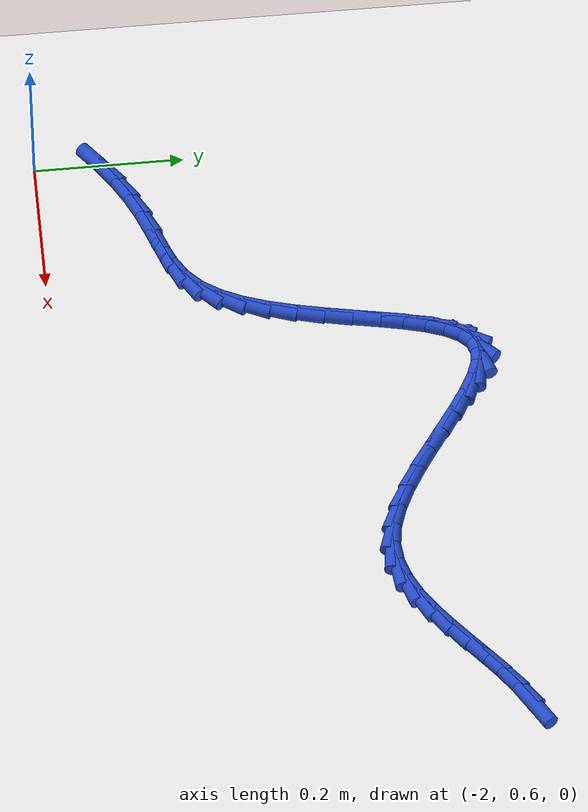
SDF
<sdf version="1.6">
 <world name="default">
  <model name="ground_plane">
   <static>1</static>
   <link name="link">
    <collision name="collision">
     <geometry><plane><normal>0 0 1</normal><size>100 100</size></plane></geometry>
     <surface><friction><ode><mu>100</mu><mu2>50</mu2></ode></friction></surface>
    </collision>
    <visual name="visual">
     <cast_shadows>0</cast_shadows>
     <geometry><plane><normal>0 0 1</normal><size>100 100</size></plane></geometry>
     <material>
      <script><uri>file://media/materials/scripts/gazebo.material</uri><name>Gazebo/WhiteGlow</name></script>
     </material>
    </visual>
   </link>
  </model>
  <model name="line">
   <link name="link_63">
    <pose>-1.059875980534617 1.153089300878136 0.01 0 1.57 0.5009448567318048</pose>
    <collision name="collision">
     <geometry><cylinder><radius>0.01</radius><length>0.08</length></cylinder></geometry>
    </collision>
    <visual name="visual">
     <material>
      <script><name>Gazebo/Blue</name><uri>file://media/materials/scripts/gazebo.material</uri></script>
     </material>
     <geometry><cylinder><radius>0.01</radius><length>0.08</length></cylinder></geometry>
    </visual>
   </link>
   <link name="link_64">
    <pose>-1.086475341348815 1.1385253536591375 0.01 0 1.57 0.587125376779683</pose>
    <collision name="collision">
     <geometry><cylinder><radius>0.01</radius><length>0.08</length></cylinder></geometry>
    </collision>
    <visual name="visual">
     <material>
      <script><name>Gazebo/Blue</name><uri>file://media/materials/scripts/gazebo.material</uri></script>
     </material>
     <geometry><cylinder><radius>0.01</radius><length>0.08</length></cylinder></geometry>
    </visual>
   </link>
   <link name="link_65">
    <pose>-1.1124869296426356 1.1212172349632477 0.01 0 1.57 0.6407535852951146</pose>
    <collision name="collision">
     <geometry><cylinder><radius>0.01</radius><length>0.08</length></cylinder></geometry>
    </collision>
    <visual name="visual">
     <material>
      <script><name>Gazebo/Blue</name><uri>file://media/materials/scripts/gazebo.material</uri></script>
     </material>
     <geometry><cylinder><radius>0.01</radius><length>0.08</length></cylinder></geometry>
    </visual>
   </link>
   <link name="link_66">
    <pose>-1.138097071387128 1.1021193473184996 0.01 0 1.57 0.6630561135025415</pose>
    <collision name="collision">
     <geometry><cylinder><radius>0.01</radius><length>0.08</length></cylinder></geometry>
    </collision>
    <visual name="visual">
     <material>
      <script><name>Gazebo/Blue</name><uri>file://media/materials/scripts/gazebo.material</uri></script>
     </material>
     <geometry><cylinder><radius>0.01</radius><length>0.08</length></cylinder></geometry>
    </visual>
   </link>
   <link name="link_67">
    <pose>-1.1634979659799358 1.0822809057299072 0.01 0 1.57 0.6557882963308712</pose>
    <collision name="collision">
     <geometry><cylinder><radius>0.01</radius><length>0.08</length></cylinder></geometry>
    </collision>
    <visual name="visual">
     <material>
      <script><name>Gazebo/Blue</name><uri>file://media/materials/scripts/gazebo.material</uri></script>
     </material>
     <geometry><cylinder><radius>0.01</radius><length>0.08</length></cylinder></geometry>
    </visual>
   </link>
   <link name="link_68">
    <pose>-1.1888818128187038 1.0627511252024853 0.01 0 1.57 0.618056303916666</pose>
    <collision name="collision">
     <geometry><cylinder><radius>0.01</radius><length>0.08</length></cylinder></geometry>
    </collision>
    <visual name="visual">
     <material>
      <script><name>Gazebo/Blue</name><uri>file://media/materials/scripts/gazebo.material</uri></script>
     </material>
     <geometry><cylinder><radius>0.01</radius><length>0.08</length></cylinder></geometry>
    </visual>
   </link>
   <link name="link_69">
    <pose>-1.2144408113010754 1.044579220741249 0.01 0 1.57 0.5463259533520801</pose>
    <collision name="collision">
     <geometry><cylinder><radius>0.01</radius><length>0.08</length></cylinder></geometry>
    </collision>
    <visual name="visual">
     <material>
      <script><name>Gazebo/Blue</name><uri>file://media/materials/scripts/gazebo.material</uri></script>
     </material>
     <geometry><cylinder><radius>0.01</radius><length>0.08</length></cylinder></geometry>
    </visual>
   </link>
   <link name="link_70">
    <pose>-1.240367160824695 1.0288144073512127 0.01 0 1.57 0.4350268030249729</pose>
    <collision name="collision">
     <geometry><cylinder><radius>0.01</radius><length>0.08</length></cylinder></geometry>
    </collision>
    <visual name="visual">
     <material>
      <script><name>Gazebo/Blue</name><uri>file://media/materials/scripts/gazebo.material</uri></script>
     </material>
     <geometry><cylinder><radius>0.01</radius><length>0.08</length></cylinder></geometry>
    </visual>
   </link>
   <link name="link_71">
    <pose>-1.2668530607872064 1.0165059000373915 0.01 0 1.57 0.2790055510104532</pose>
    <collision name="collision">
     <geometry><cylinder><radius>0.01</radius><length>0.08</length></cylinder></geometry>
    </collision>
    <visual name="visual">
     <material>
      <script><name>Gazebo/Blue</name><uri>file://media/materials/scripts/gazebo.material</uri></script>
     </material>
     <geometry><cylinder><radius>0.01</radius><length>0.08</length></cylinder></geometry>
    </visual>
   </link>
   <link name="link_72">
    <pose>-1.294090710586254 1.0087029138048 0.01 0 1.57 0.07960863686700781</pose>
    <collision name="collision">
     <geometry><cylinder><radius>0.01</radius><length>0.08</length></cylinder></geometry>
    </collision>
    <visual name="visual">
     <material>
      <script><name>Gazebo/Blue</name><uri>file://media/materials/scripts/gazebo.material</uri></script>
     </material>
     <geometry><cylinder><radius>0.01</radius><length>0.08</length></cylinder></geometry>
    </visual>
   </link>
   <link name="link_73">
    <pose>-1.3222723096194808 1.006454663658453 0.01 0 1.57 -0.14136464432406018</pose>
    <collision name="collision">
     <geometry><cylinder><radius>0.01</radius><length>0.08</length></cylinder></geometry>
    </collision>
    <visual name="visual">
     <material>
      <script><name>Gazebo/Blue</name><uri>file://media/materials/scripts/gazebo.material</uri></script>
     </material>
     <geometry><cylinder><radius>0.01</radius><length>0.08</length></cylinder></geometry>
    </visual>
   </link>
   <link name="link_74">
    <pose>-1.3515428631310427 1.0106202705275913 0.01 0 1.57 -0.31899717183233545</pose>
    <collision name="collision">
     <geometry><cylinder><radius>0.01</radius><length>0.08</length></cylinder></geometry>
    </collision>
    <visual name="visual">
     <material>
      <script><name>Gazebo/Blue</name><uri>file://media/materials/scripts/gazebo.material</uri></script>
     </material>
     <geometry><cylinder><radius>0.01</radius><length>0.08</length></cylinder></geometry>
    </visual>
   </link>
   <link name="link_75">
    <pose>-1.3816785866336523 1.020573401361074 0.01 0 1.57 -0.44021547780281073</pose>
    <collision name="collision">
     <geometry><cylinder><radius>0.01</radius><length>0.08</length></cylinder></geometry>
    </collision>
    <visual name="visual">
     <material>
      <script><name>Gazebo/Blue</name><uri>file://media/materials/scripts/gazebo.material</uri></script>
     </material>
     <geometry><cylinder><radius>0.01</radius><length>0.08</length></cylinder></geometry>
    </visual>
   </link>
   <link name="link_76">
    <pose>-1.4122822410696305 1.0349890627057887 0.01 0 1.57 -0.5196746571622749</pose>
    <collision name="collision">
     <geometry><cylinder><radius>0.01</radius><length>0.08</length></cylinder></geometry>
    </collision>
    <visual name="visual">
     <material>
      <script><name>Gazebo/Blue</name><uri>file://media/materials/scripts/gazebo.material</uri></script>
     </material>
     <geometry><cylinder><radius>0.01</radius><length>0.08</length></cylinder></geometry>
    </visual>
   </link>
   <link name="link_77">
    <pose>-1.442955578245593 1.0525381963950025 0.01 0 1.57 -0.5677427641559064</pose>
    <collision name="collision">
     <geometry><cylinder><radius>0.01</radius><length>0.08</length></cylinder></geometry>
    </collision>
    <visual name="visual">
     <material>
      <script><name>Gazebo/Blue</name><uri>file://media/materials/scripts/gazebo.material</uri></script>
     </material>
     <geometry><cylinder><radius>0.01</radius><length>0.08</length></cylinder></geometry>
    </visual>
   </link>
   <link name="link_78">
    <pose>-1.473300349968158 1.071891744261982 0.01 0 1.57 -0.589954139471864</pose>
    <collision name="collision">
     <geometry><cylinder><radius>0.01</radius><length>0.08</length></cylinder></geometry>
    </collision>
    <visual name="visual">
     <material>
      <script><name>Gazebo/Blue</name><uri>file://media/materials/scripts/gazebo.material</uri></script>
     </material>
     <geometry><cylinder><radius>0.01</radius><length>0.08</length></cylinder></geometry>
    </visual>
   </link>
   <link name="link_79">
    <pose>-1.5029183080439437 1.0917206481399946 0.01 0 1.57 -0.5875149770205776</pose>
    <collision name="collision">
     <geometry><cylinder><radius>0.01</radius><length>0.08</length></cylinder></geometry>
    </collision>
    <visual name="visual">
     <material>
      <script><name>Gazebo/Blue</name><uri>file://media/materials/scripts/gazebo.material</uri></script>
     </material>
     <geometry><cylinder><radius>0.01</radius><length>0.08</length></cylinder></geometry>
    </visual>
   </link>
   <link name="link_80">
    <pose>-1.5314112042795665 1.1106958498623078 0.01 0 1.57 -0.5569030615221331</pose>
    <collision name="collision">
     <geometry><cylinder><radius>0.01</radius><length>0.08</length></cylinder></geometry>
    </collision>
    <visual name="visual">
     <material>
      <script><name>Gazebo/Blue</name><uri>file://media/materials/scripts/gazebo.material</uri></script>
     </material>
     <geometry><cylinder><radius>0.01</radius><length>0.08</length></cylinder></geometry>
    </visual>
   </link>
   <link name="link_81">
    <pose>-1.5583807904816445 1.1274882912621889 0.01 0 1.57 -0.4875196454446779</pose>
    <collision name="collision">
     <geometry><cylinder><radius>0.01</radius><length>0.08</length></cylinder></geometry>
    </collision>
    <visual name="visual">
     <material>
      <script><name>Gazebo/Blue</name><uri>file://media/materials/scripts/gazebo.material</uri></script>
     </material>
     <geometry><cylinder><radius>0.01</radius><length>0.08</length></cylinder></geometry>
    </visual>
   </link>
   <link name="link_82">
    <pose>-1.5834288184567946 1.1407689141729045 0.01 0 1.57 -0.3555521890718399</pose>
    <collision name="collision">
     <geometry><cylinder><radius>0.01</radius><length>0.08</length></cylinder></geometry>
    </collision>
    <visual name="visual">
     <material>
      <script><name>Gazebo/Blue</name><uri>file://media/materials/scripts/gazebo.material</uri></script>
     </material>
     <geometry><cylinder><radius>0.01</radius><length>0.08</length></cylinder></geometry>
    </visual>
   </link>
   <link name="link_83">
    <pose>-1.6061570400116345 1.1492086604277216 0.01 0 1.57 -0.11295011546609711</pose>
    <collision name="collision">
     <geometry><cylinder><radius>0.01</radius><length>0.08</length></cylinder></geometry>
    </collision>
    <visual name="visual">
     <material>
      <script><name>Gazebo/Blue</name><uri>file://media/materials/scripts/gazebo.material</uri></script>
     </material>
     <geometry><cylinder><radius>0.01</radius><length>0.08</length></cylinder></geometry>
    </visual>
   </link>
   <link name="link_84">
    <pose>-1.6261672069527822 1.151478471859908 0.01 0 1.57 0.2977715425312111</pose>
    <collision name="collision">
     <geometry><cylinder><radius>0.01</radius><length>0.08</length></cylinder></geometry>
    </collision>
    <visual name="visual">
     <material>
      <script><name>Gazebo/Blue</name><uri>file://media/materials/scripts/gazebo.material</uri></script>
     </material>
     <geometry><cylinder><radius>0.01</radius><length>0.08</length></cylinder></geometry>
    </visual>
   </link>
   <link name="link_85">
    <pose>-1.643076829352203 1.146288972470581 0.01 0 1.57 0.7467129131308256</pose>
    <collision name="collision">
     <geometry><cylinder><radius>0.01</radius><length>0.08</length></cylinder></geometry>
    </collision>
    <visual name="visual">
     <material>
      <script><name>Gazebo/Blue</name><uri>file://media/materials/scripts/gazebo.material</uri></script>
     </material>
     <geometry><cylinder><radius>0.01</radius><length>0.08</length></cylinder></geometry>
    </visual>
   </link>
   <link name="link_86">
    <pose>-1.6569425465516494 1.133456593340915 0.01 0 1.57 1.0416243025756533</pose>
    <collision name="collision">
     <geometry><cylinder><radius>0.01</radius><length>0.08</length></cylinder></geometry>
    </collision>
    <visual name="visual">
     <material>
      <script><name>Gazebo/Blue</name><uri>file://media/materials/scripts/gazebo.material</uri></script>
     </material>
     <geometry><cylinder><radius>0.01</radius><length>0.08</length></cylinder></geometry>
    </visual>
   </link>
   <link name="link_87">
    <pose>-1.668307497542979 1.114022859834216 0.01 0 1.57 1.2090798800793858</pose>
    <collision name="collision">
     <geometry><cylinder><radius>0.01</radius><length>0.08</length></cylinder></geometry>
    </collision>
    <visual name="visual">
     <material>
      <script><name>Gazebo/Blue</name><uri>file://media/materials/scripts/gazebo.material</uri></script>
     </material>
     <geometry><cylinder><radius>0.01</radius><length>0.08</length></cylinder></geometry>
    </visual>
   </link>
   <link name="link_88">
    <pose>-1.6777400848380946 1.0890929154354991 0.01 0 1.57 1.3022605571112384</pose>
    <collision name="collision">
     <geometry><cylinder><radius>0.01</radius><length>0.08</length></cylinder></geometry>
    </collision>
    <visual name="visual">
     <material>
      <script><name>Gazebo/Blue</name><uri>file://media/materials/scripts/gazebo.material</uri></script>
     </material>
     <geometry><cylinder><radius>0.01</radius><length>0.08</length></cylinder></geometry>
    </visual>
   </link>
   <link name="link_89">
    <pose>-1.6858087109488973 1.0597719036297815 0.01 0 1.57 1.351336054075733</pose>
    <collision name="collision">
     <geometry><cylinder><radius>0.01</radius><length>0.08</length></cylinder></geometry>
    </collision>
    <visual name="visual">
     <material>
      <script><name>Gazebo/Blue</name><uri>file://media/materials/scripts/gazebo.material</uri></script>
     </material>
     <geometry><cylinder><radius>0.01</radius><length>0.08</length></cylinder></geometry>
    </visual>
   </link>
   <link name="link_90">
    <pose>-1.6930817783872905 1.027164967902079 0.01 0 1.57 1.3709594564115437</pose>
    <collision name="collision">
     <geometry><cylinder><radius>0.01</radius><length>0.08</length></cylinder></geometry>
    </collision>
    <visual name="visual">
     <material>
      <script><name>Gazebo/Blue</name><uri>file://media/materials/scripts/gazebo.material</uri></script>
     </material>
     <geometry><cylinder><radius>0.01</radius><length>0.08</length></cylinder></geometry>
    </visual>
   </link>
   <link name="link_91">
    <pose>-1.700127689665175 0.9923772517374077 0.01 0 1.57 1.3676567889026385</pose>
    <collision name="collision">
     <geometry><cylinder><radius>0.01</radius><length>0.08</length></cylinder></geometry>
    </collision>
    <visual name="visual">
     <material>
      <script><name>Gazebo/Blue</name><uri>file://media/materials/scripts/gazebo.material</uri></script>
     </material>
     <geometry><cylinder><radius>0.01</radius><length>0.08</length></cylinder></geometry>
    </visual>
   </link>
   <link name="link_92">
    <pose>-1.7075148472944532 0.9565138986207841 0.01 0 1.57 1.3432701046643356</pose>
    <collision name="collision">
     <geometry><cylinder><radius>0.01</radius><length>0.08</length></cylinder></geometry>
    </collision>
    <visual name="visual">
     <material>
      <script><name>Gazebo/Blue</name><uri>file://media/materials/scripts/gazebo.material</uri></script>
     </material>
     <geometry><cylinder><radius>0.01</radius><length>0.08</length></cylinder></geometry>
    </visual>
   </link>
   <link name="link_93">
    <pose>-1.715811653787027 0.9206800520372238 0.01 0 1.57 1.2962093959871033</pose>
    <collision name="collision">
     <geometry><cylinder><radius>0.01</radius><length>0.08</length></cylinder></geometry>
    </collision>
    <visual name="visual">
     <material>
      <script><name>Gazebo/Blue</name><uri>file://media/materials/scripts/gazebo.material</uri></script>
     </material>
     <geometry><cylinder><radius>0.01</radius><length>0.08</length></cylinder></geometry>
    </visual>
   </link>
   <link name="link_94">
    <pose>-1.7255865116547986 0.8859808554717441 0.01 0 1.57 1.2215385603859088</pose>
    <collision name="collision">
     <geometry><cylinder><radius>0.01</radius><length>0.08</length></cylinder></geometry>
    </collision>
    <visual name="visual">
     <material>
      <script><name>Gazebo/Blue</name><uri>file://media/materials/scripts/gazebo.material</uri></script>
     </material>
     <geometry><cylinder><radius>0.01</radius><length>0.08</length></cylinder></geometry>
    </visual>
   </link>
   <link name="link_95">
    <pose>-1.7374078234096704 0.8535214524093603 0.01 0 1.57 1.110480838294724</pose>
    <collision name="collision">
     <geometry><cylinder><radius>0.01</radius><length>0.08</length></cylinder></geometry>
    </collision>
    <visual name="visual">
     <material>
      <script><name>Gazebo/Blue</name><uri>file://media/materials/scripts/gazebo.material</uri></script>
     </material>
     <geometry><cylinder><radius>0.01</radius><length>0.08</length></cylinder></geometry>
    </visual>
   </link>
   <link name="link_96">
    <pose>-1.7518439915635442 0.8244069863350892 0.01 0 1.57 0.9504929134314511</pose>
    <collision name="collision">
     <geometry><cylinder><radius>0.01</radius><length>0.08</length></cylinder></geometry>
    </collision>
    <visual name="visual">
     <material>
      <script><name>Gazebo/Blue</name><uri>file://media/materials/scripts/gazebo.material</uri></script>
     </material>
     <geometry><cylinder><radius>0.01</radius><length>0.08</length></cylinder></geometry>
    </visual>
   </link>
   <link name="link_97">
    <pose>-1.7694634186283222 0.7997426007339467 0.01 0 1.57 0.7314903923655534</pose>
    <collision name="collision">
     <geometry><cylinder><radius>0.01</radius><length>0.08</length></cylinder></geometry>
    </collision>
    <visual name="visual">
     <material>
      <script><name>Gazebo/Blue</name><uri>file://media/materials/scripts/gazebo.material</uri></script>
     </material>
     <geometry><cylinder><radius>0.01</radius><length>0.08</length></cylinder></geometry>
    </visual>
   </link>
   <link name="link_98">
    <pose>-1.7908098034585553 0.7805819762075679 0.01 0 1.57 0.5124582041923874</pose>
    <collision name="collision">
     <geometry><cylinder><radius>0.01</radius><length>0.08</length></cylinder></geometry>
    </collision>
    <visual name="visual">
     <material>
      <script><name>Gazebo/Blue</name><uri>file://media/materials/scripts/gazebo.material</uri></script>
     </material>
     <geometry><cylinder><radius>0.01</radius><length>0.08</length></cylinder></geometry>
    </visual>
   </link>
   <link name="link_99">
    <pose>-1.8157432250008543 0.7665546701558913 0.01 0 1.57 0.373816530511853</pose>
    <collision name="collision">
     <geometry><cylinder><radius>0.01</radius><length>0.08</length></cylinder></geometry>
    </collision>
    <visual name="visual">
     <material>
      <script><name>Gazebo/Blue</name><uri>file://media/materials/scripts/gazebo.material</uri></script>
     </material>
     <geometry><cylinder><radius>0.01</radius><length>0.08</length></cylinder></geometry>
    </visual>
   </link>
   <link name="link_100">
    <pose>-1.8433691053695436 0.755718132011124 0.01 0 1.57 0.3179029174973247</pose>
    <collision name="collision">
     <geometry><cylinder><radius>0.01</radius><length>0.08</length></cylinder></geometry>
    </collision>
    <visual name="visual">
     <material>
      <script><name>Gazebo/Blue</name><uri>file://media/materials/scripts/gazebo.material</uri></script>
     </material>
     <geometry><cylinder><radius>0.01</radius><length>0.08</length></cylinder></geometry>
    </visual>
   </link>
   <link name="link_101">
    <pose>-1.872753912094023 0.746048660660323 0.01 0 1.57 0.33527437521271625</pose>
    <collision name="collision">
     <geometry><cylinder><radius>0.01</radius><length>0.08</length></cylinder></geometry>
    </collision>
    <visual name="visual">
     <material>
      <script><name>Gazebo/Blue</name><uri>file://media/materials/scripts/gazebo.material</uri></script>
     </material>
     <geometry><cylinder><radius>0.01</radius><length>0.08</length></cylinder></geometry>
    </visual>
   </link>
   <link name="link_102">
    <pose>-1.90296411326996 0.7355225574070009 0.01 0 1.57 0.4067717351546697</pose>
    <collision name="collision">
     <geometry><cylinder><radius>0.01</radius><length>0.08</length></cylinder></geometry>
    </collision>
    <visual name="visual">
     <material>
      <script><name>Gazebo/Blue</name><uri>file://media/materials/scripts/gazebo.material</uri></script>
     </material>
     <geometry><cylinder><radius>0.01</radius><length>0.08</length></cylinder></geometry>
    </visual>
   </link>
   <link name="link_103">
    <pose>-1.9331595142221043 0.7225144248423555 0.01 0 1.57 0.48396384722836516</pose>
    <collision name="collision">
     <geometry><cylinder><radius>0.01</radius><length>0.08</length></cylinder></geometry>
    </collision>
    <visual name="visual">
     <material>
      <script><name>Gazebo/Blue</name><uri>file://media/materials/scripts/gazebo.material</uri></script>
     </material>
     <geometry><cylinder><radius>0.01</radius><length>0.08</length></cylinder></geometry>
    </visual>
   </link>
   <link name="link_104">
    <pose>-1.9628530390731418 0.7069057420023319 0.01 0 1.57 0.5580725400275341</pose>
    <collision name="collision">
     <geometry><cylinder><radius>0.01</radius><length>0.08</length></cylinder></geometry>
    </collision>
    <visual name="visual">
     <material>
      <script><name>Gazebo/Blue</name><uri>file://media/materials/scripts/gazebo.material</uri></script>
     </material>
     <geometry><cylinder><radius>0.01</radius><length>0.08</length></cylinder></geometry>
    </visual>
   </link>
   <link name="link_105">
    <pose>-1.9916411053385932 0.6889342822569464 0.01 0 1.57 0.6314502451011295</pose>
    <collision name="collision">
     <geometry><cylinder><radius>0.01</radius><length>0.08</length></cylinder></geometry>
    </collision>
    <visual name="visual">
     <material>
      <script><name>Gazebo/Blue</name><uri>file://media/materials/scripts/gazebo.material</uri></script>
     </material>
     <geometry><cylinder><radius>0.01</radius><length>0.08</length></cylinder></geometry>
    </visual>
   </link>
  </model>
 </world>
</sdf>
